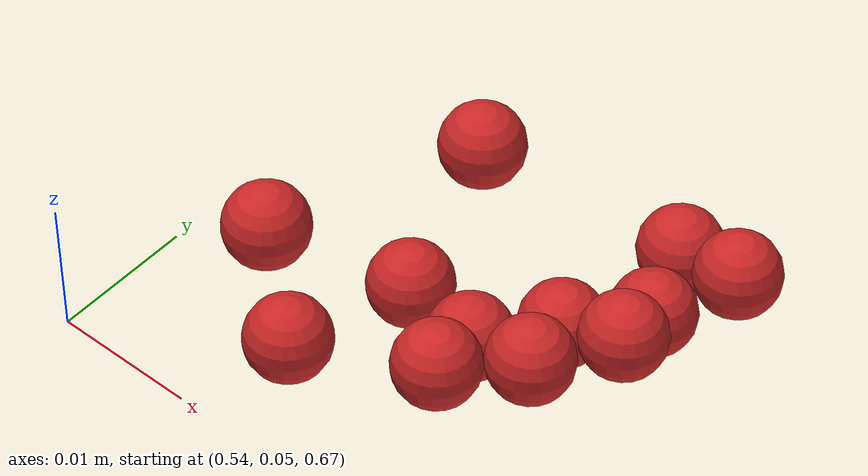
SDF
<sdf version="1.4">
 <world name="default">
  <model name="ground_plane">
   <static>1</static>
   <link name="link">
    <collision name="collision">
     <geometry><plane><normal>0 0 1</normal><size>100 100</size></plane></geometry>
     <surface><friction><ode><mu>100</mu><mu2>50</mu2></ode></friction></surface>
    </collision>
    <visual name="visual">
     <cast_shadows>0</cast_shadows>
     <geometry><plane><normal>0 0 1</normal><size>100 100</size></plane></geometry>
     <material>
      <script><uri>file://media/materials/scripts/gazebo.material</uri><name>Gazebo/Grey</name></script>
     </material>
    </visual>
    <velocity_decay><linear>0</linear><angular>0</angular></velocity_decay>
   </link>
  </model>
  <model name="sphere3">
   <pose>0.012325 -0.001566 -0.023496 -0.000143 0.000357 -6e-05</pose>
   <link name="link">
    <pose>0.552545 0.067517 0.694885 0 -0 0</pose>
    <inertial>
     <mass>1e-08</mass>
     <inertia><ixx>4e-08</ixx><ixy>0</ixy><ixz>0</ixz><iyy>4e-08</iyy><iyz>0</iyz><izz>4e-08</izz></inertia>
    </inertial>
    <collision name="collision">
     <surface>
      <bounce><restitution_coefficient>0.5</restitution_coefficient><threshold>0</threshold></bounce>
      <contact><ode><kp>1e+08</kp><kd>1</kd></ode></contact>
      <friction><ode><mu>1e-06</mu><mu2>1e-06</mu2></ode></friction>
     </surface>
     <geometry><sphere><radius>0.003</radius></sphere></geometry>
    </collision>
    <visual name="visual">
     <geometry><sphere><radius>0.003</radius></sphere></geometry>
     <material>
      <script><uri>file://media/materials/scripts/gazebo.material</uri><name>Gazebo/Red</name></script>
     </material>
    </visual>
    <velocity_decay><linear>0</linear><angular>0</angular></velocity_decay>
   </link>
   <static>0</static>
  </model>
  <model name="sphere7">
   <pose>0.016099 -0.002313 -0.023103 8.5e-05 -6.7e-05 -0.000356</pose>
   <link name="link">
    <pose>0.552545 0.073517 0.694885 0 -0 0</pose>
    <inertial>
     <mass>1e-08</mass>
     <inertia><ixx>4e-08</ixx><ixy>0</ixy><ixz>0</ixz><iyy>4e-08</iyy><iyz>0</iyz><izz>4e-08</izz></inertia>
    </inertial>
    <collision name="collision">
     <surface>
      <bounce><restitution_coefficient>0.5</restitution_coefficient><threshold>0</threshold></bounce>
      <contact><ode><kp>1e+08</kp><kd>1</kd></ode></contact>
      <friction><ode><mu>1e-06</mu><mu2>1e-06</mu2></ode></friction>
     </surface>
     <geometry><sphere><radius>0.003</radius></sphere></geometry>
    </collision>
    <visual name="visual">
     <geometry><sphere><radius>0.003</radius></sphere></geometry>
     <material>
      <script><uri>file://media/materials/scripts/gazebo.material</uri><name>Gazebo/Red</name></script>
     </material>
    </visual>
    <velocity_decay><linear>0</linear><angular>0</angular></velocity_decay>
   </link>
   <static>0</static>
  </model>
  <model name="sphere23">
   <pose>0.010411 -0.002792 -0.031521 -0.000836 0.000662 9e-06</pose>
   <link name="link">
    <pose>0.552545 0.073517 0.700885 0 -0 0</pose>
    <inertial>
     <mass>1e-08</mass>
     <inertia><ixx>4e-08</ixx><ixy>0</ixy><ixz>0</ixz><iyy>4e-08</iyy><iyz>0</iyz><izz>4e-08</izz></inertia>
    </inertial>
    <collision name="collision">
     <surface>
      <bounce><restitution_coefficient>0.5</restitution_coefficient><threshold>0</threshold></bounce>
      <contact><ode><kp>1e+08</kp><kd>1</kd></ode></contact>
      <friction><ode><mu>1e-06</mu><mu2>1e-06</mu2></ode></friction>
     </surface>
     <geometry><sphere><radius>0.003</radius></sphere></geometry>
    </collision>
    <visual name="visual">
     <geometry><sphere><radius>0.003</radius></sphere></geometry>
     <material>
      <script><uri>file://media/materials/scripts/gazebo.material</uri><name>Gazebo/Red</name></script>
     </material>
    </visual>
    <velocity_decay><linear>0</linear><angular>0</angular></velocity_decay>
   </link>
   <static>0</static>
  </model>
  <model name="sphere27">
   <pose>0.012449 0.001611 -0.031825 -0.000596 0.000119 1.1e-05</pose>
   <link name="link">
    <pose>0.552545 0.079517 0.700885 0 -0 0</pose>
    <inertial>
     <mass>1e-08</mass>
     <inertia><ixx>4e-08</ixx><ixy>0</ixy><ixz>0</ixz><iyy>4e-08</iyy><iyz>0</iyz><izz>4e-08</izz></inertia>
    </inertial>
    <collision name="collision">
     <surface>
      <bounce><restitution_coefficient>0.5</restitution_coefficient><threshold>0</threshold></bounce>
      <contact><ode><kp>1e+08</kp><kd>1</kd></ode></contact>
      <friction><ode><mu>1e-06</mu><mu2>1e-06</mu2></ode></friction>
     </surface>
     <geometry><sphere><radius>0.003</radius></sphere></geometry>
    </collision>
    <visual name="visual">
     <geometry><sphere><radius>0.003</radius></sphere></geometry>
     <material>
      <script><uri>file://media/materials/scripts/gazebo.material</uri><name>Gazebo/Red</name></script>
     </material>
    </visual>
    <velocity_decay><linear>0</linear><angular>0</angular></velocity_decay>
   </link>
   <static>0</static>
  </model>
  <model name="sphere33">
   <pose>0.006077 -0.005772 -0.032692 0 -0 0</pose>
   <link name="link">
    <pose>0.540545 0.067517 0.706885 0 -0 0</pose>
    <inertial>
     <mass>1e-08</mass>
     <inertia><ixx>4e-08</ixx><ixy>0</ixy><ixz>0</ixz><iyy>4e-08</iyy><iyz>0</iyz><izz>4e-08</izz></inertia>
    </inertial>
    <collision name="collision">
     <surface>
      <bounce><restitution_coefficient>0.5</restitution_coefficient><threshold>0</threshold></bounce>
      <contact><ode><kp>1e+08</kp><kd>1</kd></ode></contact>
      <friction><ode><mu>1e-06</mu><mu2>1e-06</mu2></ode></friction>
     </surface>
     <geometry><sphere><radius>0.003</radius></sphere></geometry>
    </collision>
    <visual name="visual">
     <geometry><sphere><radius>0.003</radius></sphere></geometry>
     <material>
      <script><uri>file://media/materials/scripts/gazebo.material</uri><name>Gazebo/Red</name></script>
     </material>
    </visual>
    <velocity_decay><linear>0</linear><angular>0</angular></velocity_decay>
   </link>
   <static>0</static>
  </model>
  <model name="sphere34">
   <pose>0.007107 0.000179 -0.037913 0.000113 8.3e-05 -3e-06</pose>
   <link name="link">
    <pose>0.546545 0.067517 0.706885 0 -0 0</pose>
    <inertial>
     <mass>1e-08</mass>
     <inertia><ixx>4e-08</ixx><ixy>0</ixy><ixz>0</ixz><iyy>4e-08</iyy><iyz>0</iyz><izz>4e-08</izz></inertia>
    </inertial>
    <collision name="collision">
     <surface>
      <bounce><restitution_coefficient>0.5</restitution_coefficient><threshold>0</threshold></bounce>
      <contact><ode><kp>1e+08</kp><kd>1</kd></ode></contact>
      <friction><ode><mu>1e-06</mu><mu2>1e-06</mu2></ode></friction>
     </surface>
     <geometry><sphere><radius>0.003</radius></sphere></geometry>
    </collision>
    <visual name="visual">
     <geometry><sphere><radius>0.003</radius></sphere></geometry>
     <material>
      <script><uri>file://media/materials/scripts/gazebo.material</uri><name>Gazebo/Red</name></script>
     </material>
    </visual>
    <velocity_decay><linear>0</linear><angular>0</angular></velocity_decay>
   </link>
   <static>0</static>
  </model>
  <model name="sphere39">
   <pose>0.014796 0.002671 -0.038138 0.000351 -0.000175 1.1e-05</pose>
   <link name="link">
    <pose>0.552545 0.073517 0.706885 0 -0 0</pose>
    <inertial>
     <mass>1e-08</mass>
     <inertia><ixx>4e-08</ixx><ixy>0</ixy><ixz>0</ixz><iyy>4e-08</iyy><iyz>0</iyz><izz>4e-08</izz></inertia>
    </inertial>
    <collision name="collision">
     <surface>
      <bounce><restitution_coefficient>0.5</restitution_coefficient><threshold>0</threshold></bounce>
      <contact><ode><kp>1e+08</kp><kd>1</kd></ode></contact>
      <friction><ode><mu>1e-06</mu><mu2>1e-06</mu2></ode></friction>
     </surface>
     <geometry><sphere><radius>0.003</radius></sphere></geometry>
    </collision>
    <visual name="visual">
     <geometry><sphere><radius>0.003</radius></sphere></geometry>
     <material>
      <script><uri>file://media/materials/scripts/gazebo.material</uri><name>Gazebo/Red</name></script>
     </material>
    </visual>
    <velocity_decay><linear>0</linear><angular>0</angular></velocity_decay>
   </link>
   <static>0</static>
  </model>
  <model name="sphere43">
   <pose>0.01812 0.000888 -0.035838 -0.000183 -0.000245 -0.000251</pose>
   <link name="link">
    <pose>0.552545 0.079517 0.706885 0 -0 0</pose>
    <inertial>
     <mass>1e-08</mass>
     <inertia><ixx>4e-08</ixx><ixy>0</ixy><ixz>0</ixz><iyy>4e-08</iyy><iyz>0</iyz><izz>4e-08</izz></inertia>
    </inertial>
    <collision name="collision">
     <surface>
      <bounce><restitution_coefficient>0.5</restitution_coefficient><threshold>0</threshold></bounce>
      <contact><ode><kp>1e+08</kp><kd>1</kd></ode></contact>
      <friction><ode><mu>1e-06</mu><mu2>1e-06</mu2></ode></friction>
     </surface>
     <geometry><sphere><radius>0.003</radius></sphere></geometry>
    </collision>
    <visual name="visual">
     <geometry><sphere><radius>0.003</radius></sphere></geometry>
     <material>
      <script><uri>file://media/materials/scripts/gazebo.material</uri><name>Gazebo/Red</name></script>
     </material>
    </visual>
    <velocity_decay><linear>0</linear><angular>0</angular></velocity_decay>
   </link>
   <static>0</static>
  </model>
  <model name="sphere50">
   <pose>0.005594 -0.009769 -0.042226 0.000399 -7.8e-05 0.000431</pose>
   <link name="link">
    <pose>0.546545 0.067517 0.712885 0 -0 0</pose>
    <inertial>
     <mass>1e-08</mass>
     <inertia><ixx>4e-08</ixx><ixy>0</ixy><ixz>0</ixz><iyy>4e-08</iyy><iyz>0</iyz><izz>4e-08</izz></inertia>
    </inertial>
    <collision name="collision">
     <surface>
      <bounce><restitution_coefficient>0.5</restitution_coefficient><threshold>0</threshold></bounce>
      <contact><ode><kp>1e+08</kp><kd>1</kd></ode></contact>
      <friction><ode><mu>1e-06</mu><mu2>1e-06</mu2></ode></friction>
     </surface>
     <geometry><sphere><radius>0.003</radius></sphere></geometry>
    </collision>
    <visual name="visual">
     <geometry><sphere><radius>0.003</radius></sphere></geometry>
     <material>
      <script><uri>file://media/materials/scripts/gazebo.material</uri><name>Gazebo/Red</name></script>
     </material>
    </visual>
    <velocity_decay><linear>0</linear><angular>0</angular></velocity_decay>
   </link>
   <static>0</static>
  </model>
  <model name="sphere51">
   <pose>0.008688 -0.005814 -0.041328 0.00066 -6.8e-05 0.000597</pose>
   <link name="link">
    <pose>0.552545 0.067517 0.712885 0 -0 0</pose>
    <inertial>
     <mass>1e-08</mass>
     <inertia><ixx>4e-08</ixx><ixy>0</ixy><ixz>0</ixz><iyy>4e-08</iyy><iyz>0</iyz><izz>4e-08</izz></inertia>
    </inertial>
    <collision name="collision">
     <surface>
      <bounce><restitution_coefficient>0.5</restitution_coefficient><threshold>0</threshold></bounce>
      <contact><ode><kp>1e+08</kp><kd>1</kd></ode></contact>
      <friction><ode><mu>1e-06</mu><mu2>1e-06</mu2></ode></friction>
     </surface>
     <geometry><sphere><radius>0.003</radius></sphere></geometry>
    </collision>
    <visual name="visual">
     <geometry><sphere><radius>0.003</radius></sphere></geometry>
     <material>
      <script><uri>file://media/materials/scripts/gazebo.material</uri><name>Gazebo/Red</name></script>
     </material>
    </visual>
    <velocity_decay><linear>0</linear><angular>0</angular></velocity_decay>
   </link>
   <static>0</static>
  </model>
  <model name="sphere67">
   <pose>0.007248 -0.000553 -0.050187 0.000433 -0.000224 0</pose>
   <link name="link">
    <pose>0.552545 0.067517 0.718885 0 -0 0</pose>
    <inertial>
     <mass>1e-08</mass>
     <inertia><ixx>4e-08</ixx><ixy>0</ixy><ixz>0</ixz><iyy>4e-08</iyy><iyz>0</iyz><izz>4e-08</izz></inertia>
    </inertial>
    <collision name="collision">
     <surface>
      <bounce><restitution_coefficient>0.5</restitution_coefficient><threshold>0</threshold></bounce>
      <contact><ode><kp>1e+08</kp><kd>1</kd></ode></contact>
      <friction><ode><mu>1e-06</mu><mu2>1e-06</mu2></ode></friction>
     </surface>
     <geometry><sphere><radius>0.003</radius></sphere></geometry>
    </collision>
    <visual name="visual">
     <geometry><sphere><radius>0.003</radius></sphere></geometry>
     <material>
      <script><uri>file://media/materials/scripts/gazebo.material</uri><name>Gazebo/Red</name></script>
     </material>
    </visual>
    <velocity_decay><linear>0</linear><angular>0</angular></velocity_decay>
   </link>
   <static>0</static>
  </model>
  <model name="sphere70">
   <pose>0.005585 0.003115 -0.045062 0 -0 0</pose>
   <link name="link">
    <pose>0.546545 0.073517 0.718885 0 -0 0</pose>
    <inertial>
     <mass>1e-08</mass>
     <inertia><ixx>4e-08</ixx><ixy>0</ixy><ixz>0</ixz><iyy>4e-08</iyy><iyz>0</iyz><izz>4e-08</izz></inertia>
    </inertial>
    <collision name="collision">
     <surface>
      <bounce><restitution_coefficient>0.5</restitution_coefficient><threshold>0</threshold></bounce>
      <contact><ode><kp>1e+08</kp><kd>1</kd></ode></contact>
      <friction><ode><mu>1e-06</mu><mu2>1e-06</mu2></ode></friction>
     </surface>
     <geometry><sphere><radius>0.003</radius></sphere></geometry>
    </collision>
    <visual name="visual">
     <geometry><sphere><radius>0.003</radius></sphere></geometry>
     <material>
      <script><uri>file://media/materials/scripts/gazebo.material</uri><name>Gazebo/Red</name></script>
     </material>
    </visual>
    <velocity_decay><linear>0</linear><angular>0</angular></velocity_decay>
   </link>
   <static>0</static>
  </model>
 </world>
</sdf>
